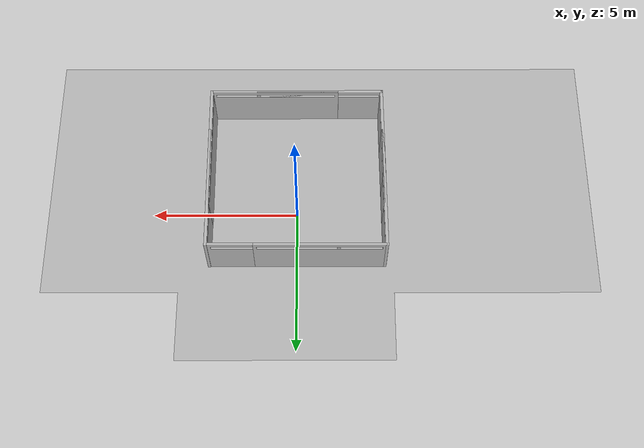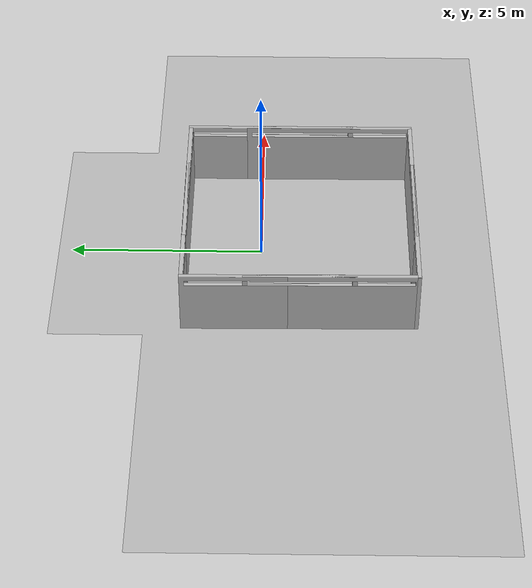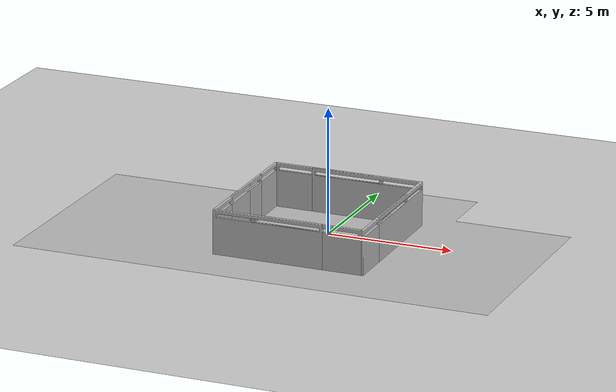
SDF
<sdf version="1.7">
 <world name="default">
  <light name="sun" type="directional">
   <pose>0 0 10 0 -0 0</pose>
   <diffuse>0.8 0.8 0.8 1</diffuse>
   <specular>0.2 0.2 0.2 1</specular>
   <attenuation>
    <range>1000</range>
    <constant>0.9</constant>
    <linear>0.01</linear>
    <quadratic>0.001</quadratic>
   </attenuation>
   <direction>-0.5 0.1 -0.9</direction>
   <spot><inner_angle>0</inner_angle><outer_angle>0</outer_angle><falloff>0</falloff></spot>
  </light>
  <model name="ground_plane">
   <static>1</static>
   <link name="link">
    <collision name="collision">
     <geometry><plane><normal>0 0 1</normal><size>100 100</size></plane></geometry>
     <surface><friction><ode><mu>100</mu><mu2>50</mu2></ode></friction></surface>
    </collision>
    <visual name="visual">
     <cast_shadows>0</cast_shadows>
     <geometry><plane><normal>0 0 1</normal><size>100 100</size></plane></geometry>
     <material>
      <script><uri>file://media/materials/scripts/gazebo.material</uri><name>Gazebo/Grey</name></script>
     </material>
    </visual>
   </link>
  </model>
  <gravity>0 0 -9.8</gravity>
  <magnetic_field>6e-06 2.3e-05 -4.2e-05</magnetic_field>
  <atmosphere type="adiabatic"/>
  <physics type="ode">
   <max_step_size>0.001</max_step_size>
   <real_time_factor>1</real_time_factor>
   <real_time_update_rate>1000</real_time_update_rate>
  </physics>
  <scene><ambient>0.4 0.4 0.4 1</ambient><background>0.7 0.7 0.7 1</background><shadows>1</shadows></scene>
  <spherical_coordinates>
   <surface_model>EARTH_WGS84</surface_model>
   <latitude_deg>0</latitude_deg>
   <longitude_deg>0</longitude_deg>
   <elevation>0</elevation>
   <heading_deg>0</heading_deg>
  </spherical_coordinates>
  <model name="aws_robomaker_residential_RoomWall_01">
   <link name="link">
    <inertial><mass>100</mass></inertial>
    <collision name="collision">
     <geometry>
      <mesh>
       <uri>model://aws_robomaker_residential_RoomWall_01/meshes/aws_RoomWall_01_collision.DAE</uri>
       <scale>1 1 1</scale>
      </mesh>
     </geometry>
    </collision>
    <visual name="visual">
     <geometry>
      <mesh><uri>model://aws_robomaker_residential_RoomWall_01/meshes/aws_RoomWall_01_visual.DAE</uri></mesh>
     </geometry>
     <meta><layer>2</layer></meta>
    </visual>
   </link>
   <static>1</static>
   <pose>-0.786966 -3.95866 0 0 -0 0</pose>
  </model>
  <model name="aws_robomaker_residential_RoomWall_01_clone">
   <link name="link">
    <inertial><mass>100</mass></inertial>
    <collision name="collision">
     <geometry>
      <mesh>
       <uri>model://aws_robomaker_residential_RoomWall_01/meshes/aws_RoomWall_01_collision.DAE</uri>
       <scale>1 1 1</scale>
      </mesh>
     </geometry>
    </collision>
    <visual name="visual">
     <geometry>
      <mesh><uri>model://aws_robomaker_residential_RoomWall_01/meshes/aws_RoomWall_01_visual.DAE</uri></mesh>
     </geometry>
     <meta><layer>2</layer></meta>
    </visual>
   </link>
   <static>1</static>
   <pose>-2.96797 -1.78974 0 0 0 -1.56208</pose>
  </model>
  <model name="aws_robomaker_residential_RoomWall_01_clone_clone">
   <link name="link">
    <inertial><mass>100</mass></inertial>
    <collision name="collision">
     <geometry>
      <mesh>
       <uri>model://aws_robomaker_residential_RoomWall_01/meshes/aws_RoomWall_01_collision.DAE</uri>
       <scale>1 1 1</scale>
      </mesh>
     </geometry>
    </collision>
    <visual name="visual">
     <geometry>
      <mesh><uri>model://aws_robomaker_residential_RoomWall_01/meshes/aws_RoomWall_01_visual.DAE</uri></mesh>
     </geometry>
     <meta><layer>2</layer></meta>
    </visual>
   </link>
   <static>1</static>
   <pose>-2.98203 -0.218092 0 0 0 -1.56134</pose>
  </model>
  <model name="aws_robomaker_residential_RoomWall_01_clone_0">
   <link name="link">
    <inertial><mass>100</mass></inertial>
    <collision name="collision">
     <geometry>
      <mesh>
       <uri>model://aws_robomaker_residential_RoomWall_01/meshes/aws_RoomWall_01_collision.DAE</uri>
       <scale>1 1 1</scale>
      </mesh>
     </geometry>
    </collision>
    <visual name="visual">
     <geometry>
      <mesh><uri>model://aws_robomaker_residential_RoomWall_01/meshes/aws_RoomWall_01_visual.DAE</uri></mesh>
     </geometry>
     <meta><layer>2</layer></meta>
    </visual>
   </link>
   <static>1</static>
   <pose>-0.782744 1.94292 0 0 -0 0</pose>
  </model>
  <model name="aws_robomaker_residential_RoomWall_01_clone_1">
   <link name="link">
    <inertial><mass>100</mass></inertial>
    <collision name="collision">
     <geometry>
      <mesh>
       <uri>model://aws_robomaker_residential_RoomWall_01/meshes/aws_RoomWall_01_collision.DAE</uri>
       <scale>1 1 1</scale>
      </mesh>
     </geometry>
    </collision>
    <visual name="visual">
     <geometry>
      <mesh><uri>model://aws_robomaker_residential_RoomWall_01/meshes/aws_RoomWall_01_visual.DAE</uri></mesh>
     </geometry>
     <meta><layer>2</layer></meta>
    </visual>
   </link>
   <static>1</static>
   <pose>0.770167 -3.95394 0 0 -0 0</pose>
  </model>
  <model name="aws_robomaker_residential_RoomWall_01_clone_clone_0">
   <link name="link">
    <inertial><mass>100</mass></inertial>
    <collision name="collision">
     <geometry>
      <mesh>
       <uri>model://aws_robomaker_residential_RoomWall_01/meshes/aws_RoomWall_01_collision.DAE</uri>
       <scale>1 1 1</scale>
      </mesh>
     </geometry>
    </collision>
    <visual name="visual">
     <geometry>
      <mesh><uri>model://aws_robomaker_residential_RoomWall_01/meshes/aws_RoomWall_01_visual.DAE</uri></mesh>
     </geometry>
     <meta><layer>2</layer></meta>
    </visual>
   </link>
   <static>1</static>
   <pose>2.99181 -1.79003 0 0 0 -1.56585</pose>
  </model>
  <model name="aws_robomaker_residential_RoomWall_01_clone_0_clone">
   <link name="link">
    <inertial><mass>100</mass></inertial>
    <collision name="collision">
     <geometry>
      <mesh>
       <uri>model://aws_robomaker_residential_RoomWall_01/meshes/aws_RoomWall_01_collision.DAE</uri>
       <scale>1 1 1</scale>
      </mesh>
     </geometry>
    </collision>
    <visual name="visual">
     <geometry>
      <mesh><uri>model://aws_robomaker_residential_RoomWall_01/meshes/aws_RoomWall_01_visual.DAE</uri></mesh>
     </geometry>
     <meta><layer>2</layer></meta>
    </visual>
   </link>
   <static>1</static>
   <pose>0.73611 1.93968 0 0 -0 0</pose>
  </model>
  <model name="aws_robomaker_residential_RoomWall_01_clone_clone_0_clone">
   <link name="link">
    <inertial><mass>100</mass></inertial>
    <collision name="collision">
     <geometry>
      <mesh>
       <uri>model://aws_robomaker_residential_RoomWall_01/meshes/aws_RoomWall_01_collision.DAE</uri>
       <scale>1 1 1</scale>
      </mesh>
     </geometry>
    </collision>
    <visual name="visual">
     <geometry>
      <mesh><uri>model://aws_robomaker_residential_RoomWall_01/meshes/aws_RoomWall_01_visual.DAE</uri></mesh>
     </geometry>
     <meta><layer>2</layer></meta>
    </visual>
   </link>
   <static>1</static>
   <pose>2.99068 -0.214073 0 0 0 -1.56746</pose>
  </model>
  <model name="aws_robomaker_residential_FloorB_01">
   <link name="link">
    <inertial><mass>100</mass></inertial>
    <collision name="collision">
     <geometry>
      <mesh>
       <uri>model://aws_robomaker_residential_FloorB_01/meshes/aws_FloorB_01_collision.DAE</uri>
       <scale>1 1 0.9</scale>
      </mesh>
     </geometry>
     <surface><friction><ode><mu>100</mu><mu2>50</mu2></ode></friction></surface>
    </collision>
    <visual name="visual">
     <geometry>
      <mesh><uri>model://aws_robomaker_residential_FloorB_01/meshes/aws_FloorB_01_visual.DAE</uri></mesh>
     </geometry>
     <meta><layer>1</layer></meta>
    </visual>
   </link>
   <static>1</static>
   <pose>-0.807167 -0.355836 0.1 0 -0 0</pose>
  </model>
 </world>
</sdf>
